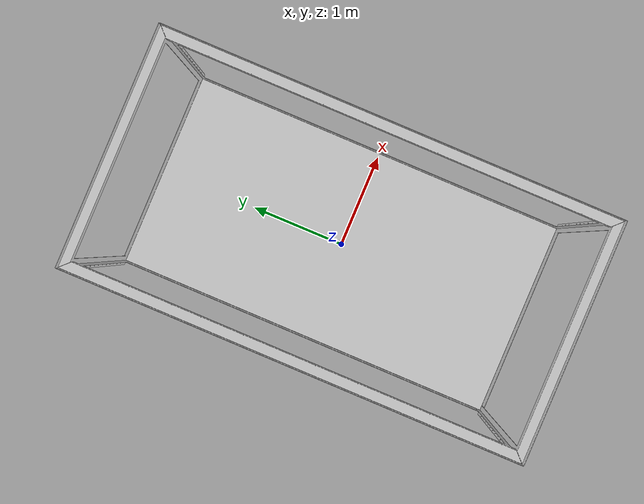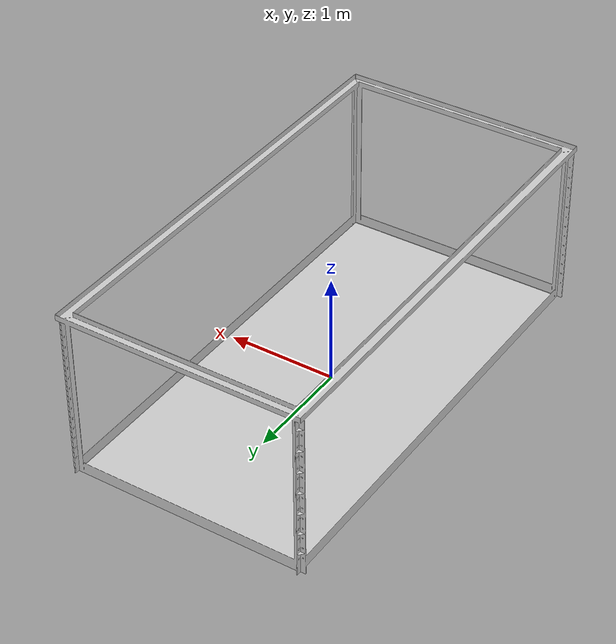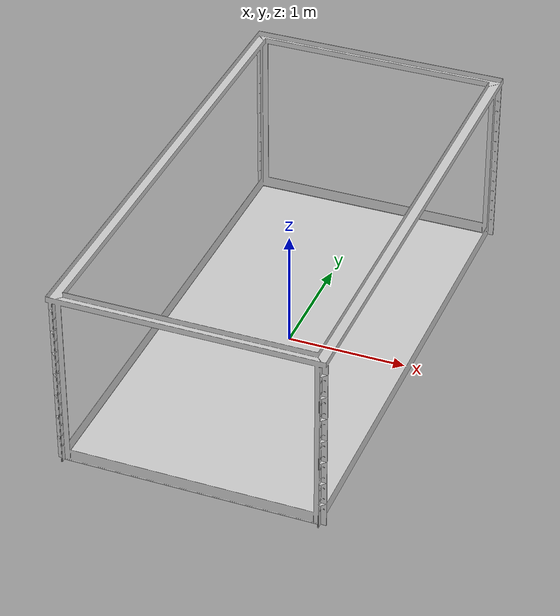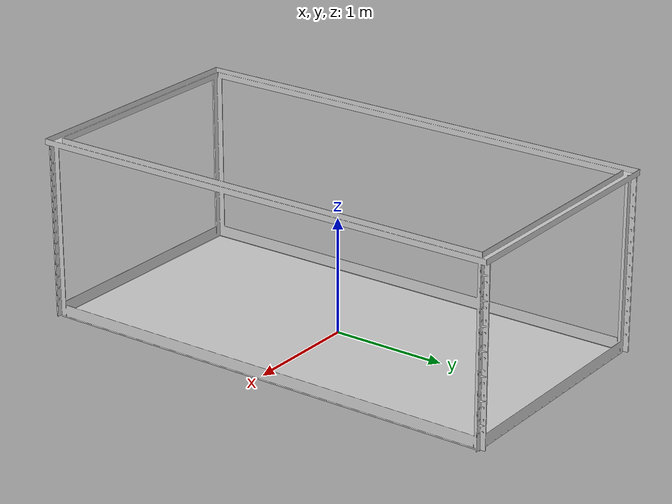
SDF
<?xml version="1.0"?>
<sdf version="1.4">
  <world name="track_1_world">

    <!-- Global light source -->
    <include>
      <uri>model://sun</uri>
    </include>

    <!-- light sources -->

    <physics name="default_physics" default="true" type="ode">
      <max_step_size>0.002</max_step_size>
      <real_time_factor>1</real_time_factor>
      <real_time_update_rate>500</real_time_update_rate>
    </physics>

      <!--Add custom track/stadium model-->
      <include>
        <uri>model://track_1</uri>
        <pose>0 0 0 0 0 0</pose>
      </include>

  </world>
</sdf>

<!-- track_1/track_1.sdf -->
<sdf version="1.5">
  <model name="track_1">
    <static>true</static>
    <link name="track_1_link">
      <collision name="track_1_collision">
        <geometry>
          <mesh>
            <uri>model://pool/meshes/StadiumLarge.DAE</uri>
          </mesh>
        </geometry>
      </collision>
      <visual name="track_1_visual">
        <cast_shadows>true</cast_shadows>
        <geometry>
          <mesh>
            <uri>model://pool/meshes/pool.dae</uri>
          </mesh>
        </geometry>
      </visual>
    </link>
  </model>
</sdf>
